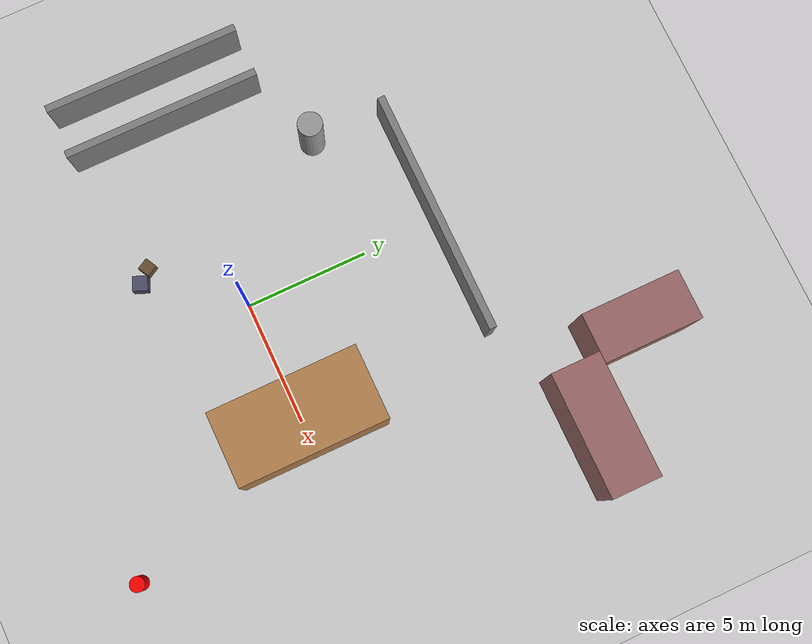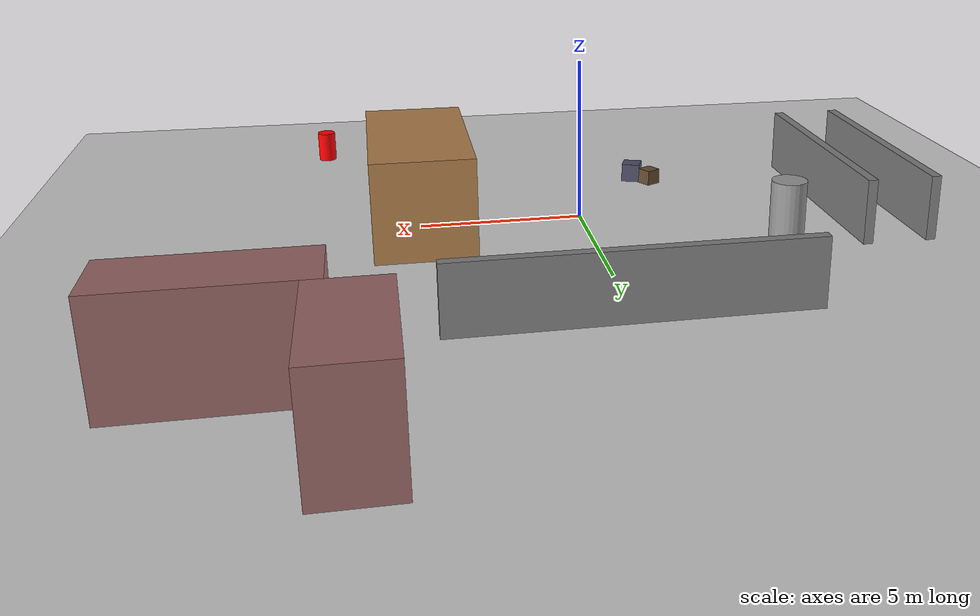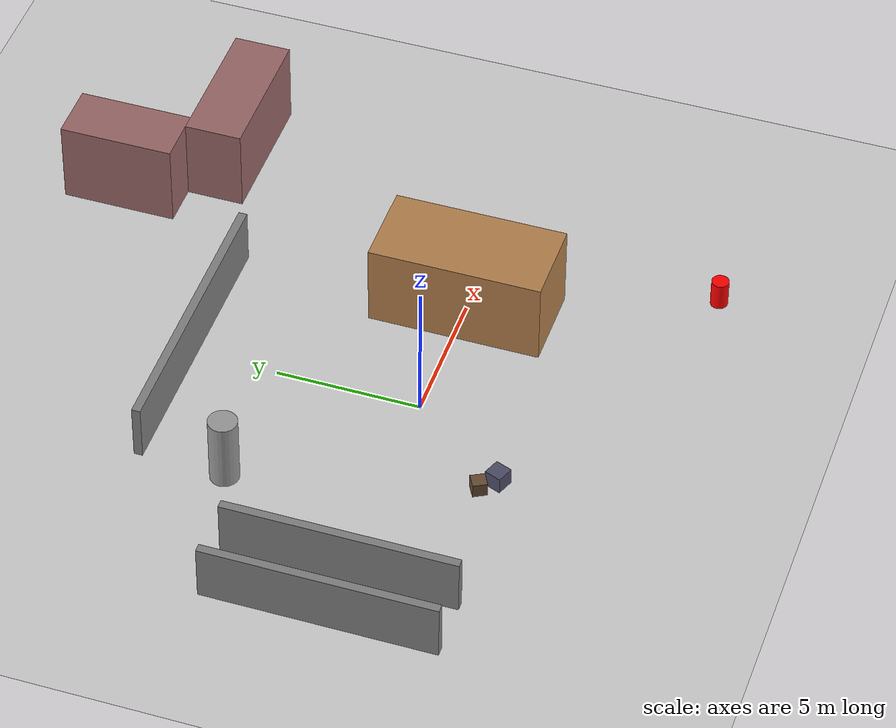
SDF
<?xml version="1.0" ?>
<sdf version="1.8">
  <world name="sar_world">

    <!-- Physics System -->
    <plugin filename="gz-sim-physics-system" name="gz::sim::systems::Physics">
      <engine>
        <filename>ignition-physics-dartsim-plugin</filename>
      </engine>
    </plugin>

    <plugin filename="gz-sim-user-commands-system" name="gz::sim::systems::UserCommands"/>
    <plugin filename="gz-sim-scene-broadcaster-system" name="gz::sim::systems::SceneBroadcaster"/>

    <!-- Sensors System -->
    <plugin filename="gz-sim-sensors-system" name="gz::sim::systems::Sensors">
      <render_engine>ogre2</render_engine>
    </plugin>

    <plugin filename="gz-sim-imu-system" name="gz::sim::systems::Imu"/>
    <plugin filename="gz-sim-contact-system" name="gz::sim::systems::Contact"/>

    <!-- Physics Configuration -->
    <physics name="1ms" type="ignored">
      <max_step_size>0.001</max_step_size>
      <real_time_factor>1.0</real_time_factor>
    </physics>

    <!-- Scene Configuration -->
    <scene>
      <ambient>0.4 0.4 0.4 1</ambient>
      <background>0.7 0.7 0.7 1</background>
      <shadows>true</shadows>
      <grid>false</grid>
    </scene>

    <!-- Lighting -->
    <light type="directional" name="sun">
      <cast_shadows>true</cast_shadows>
      <pose>0 0 10 0 0 0</pose>
      <diffuse>0.8 0.8 0.8 1</diffuse>
      <specular>0.2 0.2 0.2 1</specular>
      <attenuation>
        <range>1000</range>
        <constant>0.9</constant>
        <linear>0.01</linear>
        <quadratic>0.001</quadratic>
      </attenuation>
      <direction>-0.5 0.1 -0.9</direction>
    </light>

    <!-- Ground Plane -->
    <model name="ground_plane">
      <static>true</static>
      <link name="link">
        <collision name="collision">
          <geometry>
            <plane>
              <normal>0 0 1</normal>
              <size>100 100</size>
            </plane>
          </geometry>
        </collision>
        <visual name="visual">
          <geometry>
            <plane>
              <normal>0 0 1</normal>
              <size>100 100</size>
            </plane>
          </geometry>
          <material>
            <ambient>0.8 0.8 0.8 1</ambient>
            <diffuse>0.8 0.8 0.8 1</diffuse>
            <specular>0.1 0.1 0.1 1</specular>
          </material>
        </visual>
      </link>
    </model>

    <!-- Obstacle 1: Large Box (Building) -->
    <model name="building_1">
      <static>true</static>
      <pose>5 0 1.5 0 0 0</pose>
      <link name="link">
        <collision name="collision">
          <geometry>
            <box>
              <size>3 6 3</size>
            </box>
          </geometry>
        </collision>
        <visual name="visual">
          <geometry>
            <box>
              <size>3 6 3</size>
            </box>
          </geometry>
          <material>
            <ambient>0.7 0.5 0.3 1</ambient>
            <diffuse>0.7 0.5 0.3 1</diffuse>
          </material>
        </visual>
      </link>
    </model>

    <!-- Obstacle 2: Wall -->
    <model name="wall_1">
      <static>true</static>
      <pose>0 8 1 0 0 0</pose>
      <link name="link">
        <collision name="collision">
          <geometry>
            <box>
              <size>10 0.3 2</size>
            </box>
          </geometry>
        </collision>
        <visual name="visual">
          <geometry>
            <box>
              <size>10 0.3 2</size>
            </box>
          </geometry>
          <material>
            <ambient>0.5 0.5 0.5 1</ambient>
            <diffuse>0.5 0.5 0.5 1</diffuse>
          </material>
        </visual>
      </link>
    </model>

    <!-- Obstacle 3: Cylindrical pillar -->
    <model name="pillar_1">
      <static>true</static>
      <pose>-5 5 1.25 0 0 0</pose>
      <link name="link">
        <collision name="collision">
          <geometry>
            <cylinder>
              <radius>0.5</radius>
              <length>2.5</length>
            </cylinder>
          </geometry>
        </collision>
        <visual name="visual">
          <geometry>
            <cylinder>
              <radius>0.5</radius>
              <length>2.5</length>
            </cylinder>
          </geometry>
          <material>
            <ambient>0.6 0.6 0.6 1</ambient>
            <diffuse>0.6 0.6 0.6 1</diffuse>
          </material>
        </visual>
      </link>
    </model>

    <!-- Obstacle 4: Small boxes (debris) -->
    <model name="debris_1">
      <static>true</static>
      <pose>-3 -3 0.25 0 0 0.5</pose>
      <link name="link">
        <collision name="collision">
          <geometry>
            <box>
              <size>0.5 0.5 0.5</size>
            </box>
          </geometry>
        </collision>
        <visual name="visual">
          <geometry>
            <box>
              <size>0.5 0.5 0.5</size>
            </box>
          </geometry>
          <material>
            <ambient>0.4 0.3 0.2 1</ambient>
            <diffuse>0.4 0.3 0.2 1</diffuse>
          </material>
        </visual>
      </link>
    </model>

    <model name="debris_2">
      <static>true</static>
      <pose>-2.5 -3.5 0.3 0 0 1.2</pose>
      <link name="link">
        <collision name="collision">
          <geometry>
            <box>
              <size>0.6 0.6 0.6</size>
            </box>
          </geometry>
        </collision>
        <visual name="visual">
          <geometry>
            <box>
              <size>0.6 0.6 0.6</size>
            </box>
          </geometry>
          <material>
            <ambient>0.3 0.3 0.4 1</ambient>
            <diffuse>0.3 0.3 0.4 1</diffuse>
          </material>
        </visual>
      </link>
    </model>

    <!-- Obstacle 5: L-shaped corner (complex geometry) -->
    <model name="corner_building">
      <static>true</static>
      <pose>10 10 1.5 0 0 0</pose>
      <link name="link_1">
        <collision name="collision_1">
          <geometry>
            <box>
              <size>5 2 3</size>
            </box>
          </geometry>
        </collision>
        <visual name="visual_1">
          <geometry>
            <box>
              <size>5 2 3</size>
            </box>
          </geometry>
          <material>
            <ambient>0.6 0.4 0.4 1</ambient>
            <diffuse>0.6 0.4 0.4 1</diffuse>
          </material>
        </visual>
      </link>
      <link name="link_2">
        <pose>-3 3 0 0 0 0</pose>
        <collision name="collision_2">
          <geometry>
            <box>
              <size>2 4 3</size>
            </box>
          </geometry>
        </collision>
        <visual name="visual_2">
          <geometry>
            <box>
              <size>2 4 3</size>
            </box>
          </geometry>
          <material>
            <ambient>0.6 0.4 0.4 1</ambient>
            <diffuse>0.6 0.4 0.4 1</diffuse>
          </material>
        </visual>
      </link>
    </model>

    <!-- Narrow corridor (for testing tight spaces) -->
    <model name="corridor_wall_left">
      <static>true</static>
      <pose>-8 0 1 0 0 0</pose>
      <link name="link">
        <collision name="collision">
          <geometry>
            <box>
              <size>0.3 8 2</size>
            </box>
          </geometry>
        </collision>
        <visual name="visual">
          <geometry>
            <box>
              <size>0.3 8 2</size>
            </box>
          </geometry>
          <material>
            <ambient>0.5 0.5 0.5 1</ambient>
            <diffuse>0.5 0.5 0.5 1</diffuse>
          </material>
        </visual>
      </link>
    </model>

    <model name="corridor_wall_right">
      <static>true</static>
      <pose>-10 0 1 0 0 0</pose>
      <link name="link">
        <collision name="collision">
          <geometry>
            <box>
              <size>0.3 8 2</size>
            </box>
          </geometry>
        </collision>
        <visual name="visual">
          <geometry>
            <box>
              <size>0.3 8 2</size>
            </box>
          </geometry>
          <material>
            <ambient>0.5 0.5 0.5 1</ambient>
            <diffuse>0.5 0.5 0.5 1</diffuse>
          </material>
        </visual>
      </link>
    </model>

    <!-- Target marker (for SAR mission) -->
    <model name="target_person">
      <static>true</static>
      <pose>8 -8 0.5 0 0 0</pose>
      <link name="link">
        <visual name="visual">
          <geometry>
            <cylinder>
              <radius>0.3</radius>
              <length>1.0</length>
            </cylinder>
          </geometry>
          <material>
            <ambient>1 0 0 1</ambient>
            <diffuse>1 0 0 1</diffuse>
            <emissive>0.3 0 0 1</emissive>
          </material>
        </visual>
      </link>
    </model>

  </world>
</sdf>
